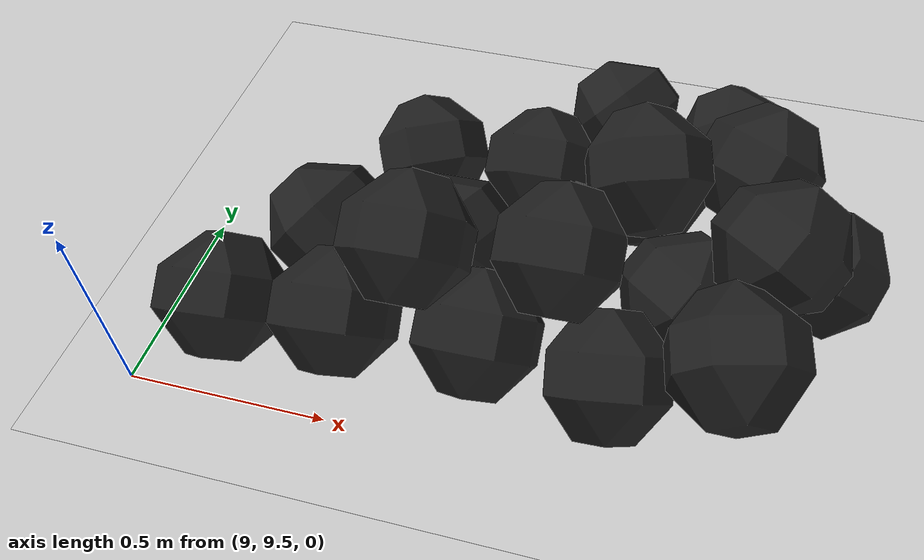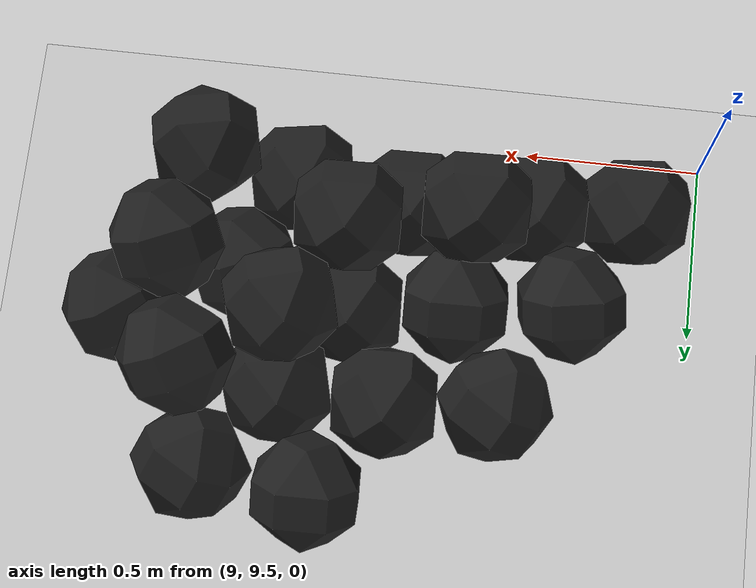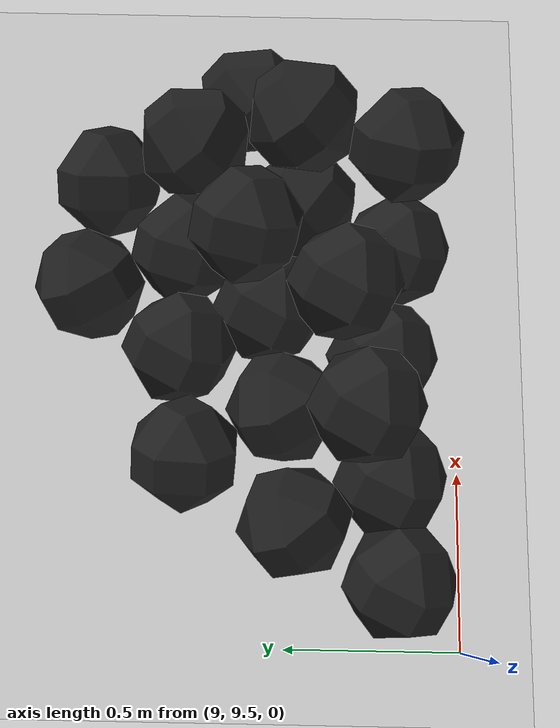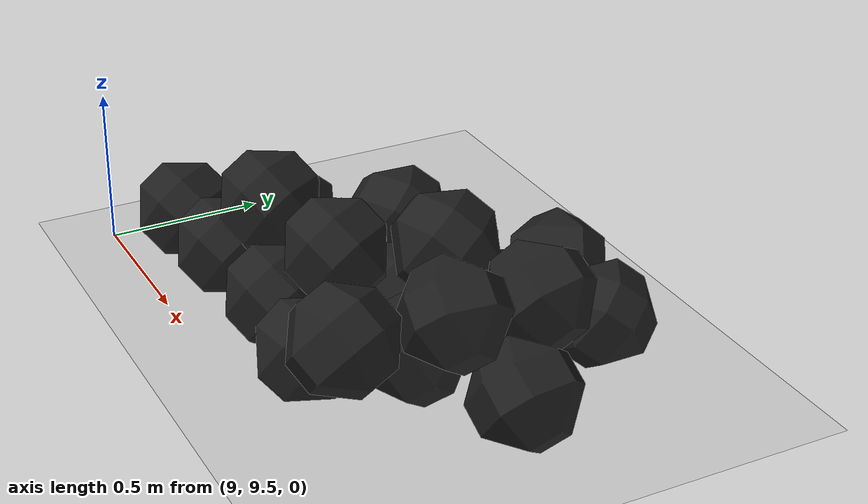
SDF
<sdf version="1.7">
 <world name="default">
  <model name="ground_plane">
   <static>1</static>
   <link name="link">
    <collision name="collision">
     <geometry><plane><normal>0 0 1</normal><size>100 100</size></plane></geometry>
     <surface><friction><ode><mu>100</mu><mu2>50</mu2></ode></friction></surface>
    </collision>
    <visual name="visual">
     <cast_shadows>0</cast_shadows>
     <geometry><plane><normal>0 0 1</normal><size>100 100</size></plane></geometry>
     <material>
      <script><uri>file://media/materials/scripts/gazebo.material</uri><name>Gazebo/Grey</name></script>
     </material>
    </visual>
   </link>
  </model>
  <model name="haoduomiantiaa_17">
   <link name="link_0">
    <inertial>
     <mass>0.2</mass>
     <inertia>
      <ixx>0.166667</ixx>
      <ixy>0</ixy>
      <ixz>0</ixz>
      <iyy>0.166667</iyy>
      <iyz>0</iyz>
      <izz>0.166667</izz>
     </inertia>
    </inertial>
    <visual name="visual">
     <geometry>
      <mesh>
       <uri>/home/lihaoyang/catkin_ws/src/pudong_gazebo/world/stl/haoduomianti.stl</uri>
       <scale>1 1 1</scale>
      </mesh>
     </geometry>
     <material>
      <lighting>1</lighting>
      <script><uri>file://media/materials/scripts/gazebo.material</uri><name>Gazebo/Black</name></script>
      <shader type="pixel"><normal_map>__default__</normal_map></shader>
      <ambient>0.3 0.3 0.3 1</ambient>
      <diffuse>0.7 0.7 0.7 1</diffuse>
      <specular>0.01 0.01 0.01 1</specular>
      <emissive>0 0 0 1</emissive>
     </material>
    </visual>
    <collision name="collision">
     <geometry>
      <mesh>
       <uri>/home/lihaoyang/catkin_ws/src/pudong_gazebo/world/stl/haoduomianti.stl</uri>
       <scale>1 1 1</scale>
      </mesh>
     </geometry>
     <surface>
      <friction>
       <ode><mu>1</mu><mu2>1</mu2><fdir1>0 0 0</fdir1><slip1>0</slip1><slip2>0</slip2></ode>
       <torsional>
        <coefficient>1</coefficient>
        <patch_radius>0</patch_radius>
        <surface_radius>0</surface_radius>
        <use_patch_radius>1</use_patch_radius>
        <ode><slip>0</slip></ode>
       </torsional>
      </friction>
      <bounce><restitution_coefficient>0</restitution_coefficient><threshold>1e+06</threshold></bounce>
      <contact>
       <collide_without_contact>0</collide_without_contact>
       <collide_without_contact_bitmask>1</collide_without_contact_bitmask>
       <collide_bitmask>1</collide_bitmask>
       <ode>
        <soft_cfm>0</soft_cfm>
        <soft_erp>0.2</soft_erp>
        <kp>1e+13</kp>
        <kd>1</kd>
        <max_vel>0.01</max_vel>
        <min_depth>0</min_depth>
       </ode>
       <bullet>
        <split_impulse>1</split_impulse>
        <split_impulse_penetration_threshold>-0.01</split_impulse_penetration_threshold>
        <soft_cfm>0</soft_cfm>
        <soft_erp>0.2</soft_erp>
        <kp>1e+13</kp>
        <kd>1</kd>
       </bullet>
      </contact>
     </surface>
    </collision>
   </link>
   <static>0</static>
   <pose>10.4162 9.61039 0.072056 0.474737 -0.776287 -0.110228</pose>
  </model>
  <model name="haoduomiantiaa_24">
   <link name="link_0">
    <inertial>
     <mass>0.2</mass>
     <inertia>
      <ixx>0.166667</ixx>
      <ixy>0</ixy>
      <ixz>0</ixz>
      <iyy>0.166667</iyy>
      <iyz>0</iyz>
      <izz>0.166667</izz>
     </inertia>
    </inertial>
    <visual name="visual">
     <geometry>
      <mesh>
       <uri>/home/lihaoyang/catkin_ws/src/pudong_gazebo/world/stl/haoduomianti.stl</uri>
       <scale>1 1 1</scale>
      </mesh>
     </geometry>
     <material>
      <lighting>1</lighting>
      <script><uri>file://media/materials/scripts/gazebo.material</uri><name>Gazebo/Black</name></script>
      <shader type="pixel"><normal_map>__default__</normal_map></shader>
      <ambient>0.3 0.3 0.3 1</ambient>
      <diffuse>0.7 0.7 0.7 1</diffuse>
      <specular>0.01 0.01 0.01 1</specular>
      <emissive>0 0 0 1</emissive>
     </material>
    </visual>
    <collision name="collision">
     <geometry>
      <mesh>
       <uri>/home/lihaoyang/catkin_ws/src/pudong_gazebo/world/stl/haoduomianti.stl</uri>
       <scale>1 1 1</scale>
      </mesh>
     </geometry>
     <surface>
      <friction>
       <ode><mu>1</mu><mu2>1</mu2><fdir1>0 0 0</fdir1><slip1>0</slip1><slip2>0</slip2></ode>
       <torsional>
        <coefficient>1</coefficient>
        <patch_radius>0</patch_radius>
        <surface_radius>0</surface_radius>
        <use_patch_radius>1</use_patch_radius>
        <ode><slip>0</slip></ode>
       </torsional>
      </friction>
      <bounce><restitution_coefficient>0</restitution_coefficient><threshold>1e+06</threshold></bounce>
      <contact>
       <collide_without_contact>0</collide_without_contact>
       <collide_without_contact_bitmask>1</collide_without_contact_bitmask>
       <collide_bitmask>1</collide_bitmask>
       <ode>
        <soft_cfm>0</soft_cfm>
        <soft_erp>0.2</soft_erp>
        <kp>1e+13</kp>
        <kd>1</kd>
        <max_vel>0.01</max_vel>
        <min_depth>0</min_depth>
       </ode>
       <bullet>
        <split_impulse>1</split_impulse>
        <split_impulse_penetration_threshold>-0.01</split_impulse_penetration_threshold>
        <soft_cfm>0</soft_cfm>
        <soft_erp>0.2</soft_erp>
        <kp>1e+13</kp>
        <kd>1</kd>
       </bullet>
      </contact>
     </surface>
    </collision>
   </link>
   <static>0</static>
   <pose>10.14 10.1175 0.115022 0.743912 -0.577734 1.88422</pose>
  </model>
  <model name="haoduomiantiaa_25">
   <link name="link_0">
    <inertial>
     <mass>0.2</mass>
     <inertia>
      <ixx>0.166667</ixx>
      <ixy>0</ixy>
      <ixz>0</ixz>
      <iyy>0.166667</iyy>
      <iyz>0</iyz>
      <izz>0.166667</izz>
     </inertia>
    </inertial>
    <visual name="visual">
     <geometry>
      <mesh>
       <uri>/home/lihaoyang/catkin_ws/src/pudong_gazebo/world/stl/haoduomianti.stl</uri>
       <scale>1 1 1</scale>
      </mesh>
     </geometry>
     <material>
      <lighting>1</lighting>
      <script><uri>file://media/materials/scripts/gazebo.material</uri><name>Gazebo/Black</name></script>
      <shader type="pixel"><normal_map>__default__</normal_map></shader>
      <ambient>0.3 0.3 0.3 1</ambient>
      <diffuse>0.7 0.7 0.7 1</diffuse>
      <specular>0.01 0.01 0.01 1</specular>
      <emissive>0 0 0 1</emissive>
     </material>
    </visual>
    <collision name="collision">
     <geometry>
      <mesh>
       <uri>/home/lihaoyang/catkin_ws/src/pudong_gazebo/world/stl/haoduomianti.stl</uri>
       <scale>1 1 1</scale>
      </mesh>
     </geometry>
     <surface>
      <friction>
       <ode><mu>1</mu><mu2>1</mu2><fdir1>0 0 0</fdir1><slip1>0</slip1><slip2>0</slip2></ode>
       <torsional>
        <coefficient>1</coefficient>
        <patch_radius>0</patch_radius>
        <surface_radius>0</surface_radius>
        <use_patch_radius>1</use_patch_radius>
        <ode><slip>0</slip></ode>
       </torsional>
      </friction>
      <bounce><restitution_coefficient>0</restitution_coefficient><threshold>1e+06</threshold></bounce>
      <contact>
       <collide_without_contact>0</collide_without_contact>
       <collide_without_contact_bitmask>1</collide_without_contact_bitmask>
       <collide_bitmask>1</collide_bitmask>
       <ode>
        <soft_cfm>0</soft_cfm>
        <soft_erp>0.2</soft_erp>
        <kp>1e+13</kp>
        <kd>1</kd>
        <max_vel>0.01</max_vel>
        <min_depth>0</min_depth>
       </ode>
       <bullet>
        <split_impulse>1</split_impulse>
        <split_impulse_penetration_threshold>-0.01</split_impulse_penetration_threshold>
        <soft_cfm>0</soft_cfm>
        <soft_erp>0.2</soft_erp>
        <kp>1e+13</kp>
        <kd>1</kd>
       </bullet>
      </contact>
     </surface>
    </collision>
   </link>
   <static>0</static>
   <pose>9.83292 10.3087 -0.115475 0.785396 -0.615449 1.60296</pose>
  </model>
  <model name="haoduomiantiaa_31">
   <link name="link_0">
    <inertial>
     <mass>0.2</mass>
     <inertia>
      <ixx>0.166667</ixx>
      <ixy>0</ixy>
      <ixz>0</ixz>
      <iyy>0.166667</iyy>
      <iyz>0</iyz>
      <izz>0.166667</izz>
     </inertia>
    </inertial>
    <visual name="visual">
     <geometry>
      <mesh>
       <uri>/home/lihaoyang/catkin_ws/src/pudong_gazebo/world/stl/haoduomianti.stl</uri>
       <scale>1 1 1</scale>
      </mesh>
     </geometry>
     <material>
      <lighting>1</lighting>
      <script><uri>file://media/materials/scripts/gazebo.material</uri><name>Gazebo/Black</name></script>
      <shader type="pixel"><normal_map>__default__</normal_map></shader>
      <ambient>0.3 0.3 0.3 1</ambient>
      <diffuse>0.7 0.7 0.7 1</diffuse>
      <specular>0.01 0.01 0.01 1</specular>
      <emissive>0 0 0 1</emissive>
     </material>
    </visual>
    <collision name="collision">
     <geometry>
      <mesh>
       <uri>/home/lihaoyang/catkin_ws/src/pudong_gazebo/world/stl/haoduomianti.stl</uri>
       <scale>1 1 1</scale>
      </mesh>
     </geometry>
     <surface>
      <friction>
       <ode><mu>1</mu><mu2>1</mu2><fdir1>0 0 0</fdir1><slip1>0</slip1><slip2>0</slip2></ode>
       <torsional>
        <coefficient>1</coefficient>
        <patch_radius>0</patch_radius>
        <surface_radius>0</surface_radius>
        <use_patch_radius>1</use_patch_radius>
        <ode><slip>0</slip></ode>
       </torsional>
      </friction>
      <bounce><restitution_coefficient>0</restitution_coefficient><threshold>1e+06</threshold></bounce>
      <contact>
       <collide_without_contact>0</collide_without_contact>
       <collide_without_contact_bitmask>1</collide_without_contact_bitmask>
       <collide_bitmask>1</collide_bitmask>
       <ode>
        <soft_cfm>0</soft_cfm>
        <soft_erp>0.2</soft_erp>
        <kp>1e+13</kp>
        <kd>1</kd>
        <max_vel>0.01</max_vel>
        <min_depth>0</min_depth>
       </ode>
       <bullet>
        <split_impulse>1</split_impulse>
        <split_impulse_penetration_threshold>-0.01</split_impulse_penetration_threshold>
        <soft_cfm>0</soft_cfm>
        <soft_erp>0.2</soft_erp>
        <kp>1e+13</kp>
        <kd>1</kd>
       </bullet>
      </contact>
     </surface>
    </collision>
   </link>
   <static>0</static>
   <pose>9.66597 10.0114 -0.115492 0.785407 -0.615488 -1.55066</pose>
  </model>
  <model name="haoduomiantiaa_37">
   <link name="link_0">
    <inertial>
     <mass>0.2</mass>
     <inertia>
      <ixx>0.166667</ixx>
      <ixy>0</ixy>
      <ixz>0</ixz>
      <iyy>0.166667</iyy>
      <iyz>0</iyz>
      <izz>0.166667</izz>
     </inertia>
    </inertial>
    <visual name="visual">
     <geometry>
      <mesh>
       <uri>/home/lihaoyang/catkin_ws/src/pudong_gazebo/world/stl/haoduomianti.stl</uri>
       <scale>1 1 1</scale>
      </mesh>
     </geometry>
     <material>
      <lighting>1</lighting>
      <script><uri>file://media/materials/scripts/gazebo.material</uri><name>Gazebo/Black</name></script>
      <shader type="pixel"><normal_map>__default__</normal_map></shader>
      <ambient>0.3 0.3 0.3 1</ambient>
      <diffuse>0.7 0.7 0.7 1</diffuse>
      <specular>0.01 0.01 0.01 1</specular>
      <emissive>0 0 0 1</emissive>
     </material>
    </visual>
    <collision name="collision">
     <geometry>
      <mesh>
       <uri>/home/lihaoyang/catkin_ws/src/pudong_gazebo/world/stl/haoduomianti.stl</uri>
       <scale>1 1 1</scale>
      </mesh>
     </geometry>
     <surface>
      <friction>
       <ode><mu>1</mu><mu2>1</mu2><fdir1>0 0 0</fdir1><slip1>0</slip1><slip2>0</slip2></ode>
       <torsional>
        <coefficient>1</coefficient>
        <patch_radius>0</patch_radius>
        <surface_radius>0</surface_radius>
        <use_patch_radius>1</use_patch_radius>
        <ode><slip>0</slip></ode>
       </torsional>
      </friction>
      <bounce><restitution_coefficient>0</restitution_coefficient><threshold>1e+06</threshold></bounce>
      <contact>
       <collide_without_contact>0</collide_without_contact>
       <collide_without_contact_bitmask>1</collide_without_contact_bitmask>
       <collide_bitmask>1</collide_bitmask>
       <ode>
        <soft_cfm>0</soft_cfm>
        <soft_erp>0.2</soft_erp>
        <kp>1e+13</kp>
        <kd>1</kd>
        <max_vel>0.01</max_vel>
        <min_depth>0</min_depth>
       </ode>
       <bullet>
        <split_impulse>1</split_impulse>
        <split_impulse_penetration_threshold>-0.01</split_impulse_penetration_threshold>
        <soft_cfm>0</soft_cfm>
        <soft_erp>0.2</soft_erp>
        <kp>1e+13</kp>
        <kd>1</kd>
       </bullet>
      </contact>
     </surface>
    </collision>
   </link>
   <static>0</static>
   <pose>9.95708 10.0529 -0.1154 0.785363 -0.615462 1.6029</pose>
  </model>
  <model name="haoduomiantiaa_38">
   <link name="link_0">
    <inertial>
     <mass>0.2</mass>
     <inertia>
      <ixx>0.166667</ixx>
      <ixy>0</ixy>
      <ixz>0</ixz>
      <iyy>0.166667</iyy>
      <iyz>0</iyz>
      <izz>0.166667</izz>
     </inertia>
    </inertial>
    <visual name="visual">
     <geometry>
      <mesh>
       <uri>/home/lihaoyang/catkin_ws/src/pudong_gazebo/world/stl/haoduomianti.stl</uri>
       <scale>1 1 1</scale>
      </mesh>
     </geometry>
     <material>
      <lighting>1</lighting>
      <script><uri>file://media/materials/scripts/gazebo.material</uri><name>Gazebo/Black</name></script>
      <shader type="pixel"><normal_map>__default__</normal_map></shader>
      <ambient>0.3 0.3 0.3 1</ambient>
      <diffuse>0.7 0.7 0.7 1</diffuse>
      <specular>0.01 0.01 0.01 1</specular>
      <emissive>0 0 0 1</emissive>
     </material>
    </visual>
    <collision name="collision">
     <geometry>
      <mesh>
       <uri>/home/lihaoyang/catkin_ws/src/pudong_gazebo/world/stl/haoduomianti.stl</uri>
       <scale>1 1 1</scale>
      </mesh>
     </geometry>
     <surface>
      <friction>
       <ode><mu>1</mu><mu2>1</mu2><fdir1>0 0 0</fdir1><slip1>0</slip1><slip2>0</slip2></ode>
       <torsional>
        <coefficient>1</coefficient>
        <patch_radius>0</patch_radius>
        <surface_radius>0</surface_radius>
        <use_patch_radius>1</use_patch_radius>
        <ode><slip>0</slip></ode>
       </torsional>
      </friction>
      <bounce><restitution_coefficient>0</restitution_coefficient><threshold>1e+06</threshold></bounce>
      <contact>
       <collide_without_contact>0</collide_without_contact>
       <collide_without_contact_bitmask>1</collide_without_contact_bitmask>
       <collide_bitmask>1</collide_bitmask>
       <ode>
        <soft_cfm>0</soft_cfm>
        <soft_erp>0.2</soft_erp>
        <kp>1e+13</kp>
        <kd>1</kd>
        <max_vel>0.01</max_vel>
        <min_depth>0</min_depth>
       </ode>
       <bullet>
        <split_impulse>1</split_impulse>
        <split_impulse_penetration_threshold>-0.01</split_impulse_penetration_threshold>
        <soft_cfm>0</soft_cfm>
        <soft_erp>0.2</soft_erp>
        <kp>1e+13</kp>
        <kd>1</kd>
       </bullet>
      </contact>
     </surface>
    </collision>
   </link>
   <static>0</static>
   <pose>9.52933 10.2845 -0.115477 0.785389 -0.615473 -2.14198</pose>
  </model>
  <model name="haoduomiantiaa_41">
   <link name="link_0">
    <inertial>
     <mass>0.2</mass>
     <inertia>
      <ixx>0.166667</ixx>
      <ixy>0</ixy>
      <ixz>0</ixz>
      <iyy>0.166667</iyy>
      <iyz>0</iyz>
      <izz>0.166667</izz>
     </inertia>
    </inertial>
    <visual name="visual">
     <geometry>
      <mesh>
       <uri>/home/lihaoyang/catkin_ws/src/pudong_gazebo/world/stl/haoduomianti.stl</uri>
       <scale>1 1 1</scale>
      </mesh>
     </geometry>
     <material>
      <lighting>1</lighting>
      <script><uri>file://media/materials/scripts/gazebo.material</uri><name>Gazebo/Black</name></script>
      <shader type="pixel"><normal_map>__default__</normal_map></shader>
      <ambient>0.3 0.3 0.3 1</ambient>
      <diffuse>0.7 0.7 0.7 1</diffuse>
      <specular>0.01 0.01 0.01 1</specular>
      <emissive>0 0 0 1</emissive>
     </material>
    </visual>
    <collision name="collision">
     <geometry>
      <mesh>
       <uri>/home/lihaoyang/catkin_ws/src/pudong_gazebo/world/stl/haoduomianti.stl</uri>
       <scale>1 1 1</scale>
      </mesh>
     </geometry>
     <surface>
      <friction>
       <ode><mu>1</mu><mu2>1</mu2><fdir1>0 0 0</fdir1><slip1>0</slip1><slip2>0</slip2></ode>
       <torsional>
        <coefficient>1</coefficient>
        <patch_radius>0</patch_radius>
        <surface_radius>0</surface_radius>
        <use_patch_radius>1</use_patch_radius>
        <ode><slip>0</slip></ode>
       </torsional>
      </friction>
      <bounce><restitution_coefficient>0</restitution_coefficient><threshold>1e+06</threshold></bounce>
      <contact>
       <collide_without_contact>0</collide_without_contact>
       <collide_without_contact_bitmask>1</collide_without_contact_bitmask>
       <collide_bitmask>1</collide_bitmask>
       <ode>
        <soft_cfm>0</soft_cfm>
        <soft_erp>0.2</soft_erp>
        <kp>1e+13</kp>
        <kd>1</kd>
        <max_vel>0.01</max_vel>
        <min_depth>0</min_depth>
       </ode>
       <bullet>
        <split_impulse>1</split_impulse>
        <split_impulse_penetration_threshold>-0.01</split_impulse_penetration_threshold>
        <soft_cfm>0</soft_cfm>
        <soft_erp>0.2</soft_erp>
        <kp>1e+13</kp>
        <kd>1</kd>
       </bullet>
      </contact>
     </surface>
    </collision>
   </link>
   <static>0</static>
   <pose>9.18842 9.68753 -0.11548 0.785398 -0.615476 -2.53553</pose>
  </model>
  <model name="haoduomiantiaa_42">
   <link name="link_0">
    <inertial>
     <mass>0.2</mass>
     <inertia>
      <ixx>0.166667</ixx>
      <ixy>0</ixy>
      <ixz>0</ixz>
      <iyy>0.166667</iyy>
      <iyz>0</iyz>
      <izz>0.166667</izz>
     </inertia>
    </inertial>
    <visual name="visual">
     <geometry>
      <mesh>
       <uri>/home/lihaoyang/catkin_ws/src/pudong_gazebo/world/stl/haoduomianti.stl</uri>
       <scale>1 1 1</scale>
      </mesh>
     </geometry>
     <material>
      <lighting>1</lighting>
      <script><uri>file://media/materials/scripts/gazebo.material</uri><name>Gazebo/Black</name></script>
      <shader type="pixel"><normal_map>__default__</normal_map></shader>
      <ambient>0.3 0.3 0.3 1</ambient>
      <diffuse>0.7 0.7 0.7 1</diffuse>
      <specular>0.01 0.01 0.01 1</specular>
      <emissive>0 0 0 1</emissive>
     </material>
    </visual>
    <collision name="collision">
     <geometry>
      <mesh>
       <uri>/home/lihaoyang/catkin_ws/src/pudong_gazebo/world/stl/haoduomianti.stl</uri>
       <scale>1 1 1</scale>
      </mesh>
     </geometry>
     <surface>
      <friction>
       <ode><mu>1</mu><mu2>1</mu2><fdir1>0 0 0</fdir1><slip1>0</slip1><slip2>0</slip2></ode>
       <torsional>
        <coefficient>1</coefficient>
        <patch_radius>0</patch_radius>
        <surface_radius>0</surface_radius>
        <use_patch_radius>1</use_patch_radius>
        <ode><slip>0</slip></ode>
       </torsional>
      </friction>
      <bounce><restitution_coefficient>0</restitution_coefficient><threshold>1e+06</threshold></bounce>
      <contact>
       <collide_without_contact>0</collide_without_contact>
       <collide_without_contact_bitmask>1</collide_without_contact_bitmask>
       <collide_bitmask>1</collide_bitmask>
       <ode>
        <soft_cfm>0</soft_cfm>
        <soft_erp>0.2</soft_erp>
        <kp>1e+13</kp>
        <kd>1</kd>
        <max_vel>0.01</max_vel>
        <min_depth>0</min_depth>
       </ode>
       <bullet>
        <split_impulse>1</split_impulse>
        <split_impulse_penetration_threshold>-0.01</split_impulse_penetration_threshold>
        <soft_cfm>0</soft_cfm>
        <soft_erp>0.2</soft_erp>
        <kp>1e+13</kp>
        <kd>1</kd>
       </bullet>
      </contact>
     </surface>
    </collision>
   </link>
   <static>0</static>
   <pose>10.2633 9.95814 -0.115457 0.785077 -0.615612 0.933478</pose>
  </model>
  <model name="haoduomiantiaa_58">
   <link name="link_0">
    <inertial>
     <mass>0.2</mass>
     <inertia>
      <ixx>0.166667</ixx>
      <ixy>0</ixy>
      <ixz>0</ixz>
      <iyy>0.166667</iyy>
      <iyz>0</iyz>
      <izz>0.166667</izz>
     </inertia>
    </inertial>
    <visual name="visual">
     <geometry>
      <mesh>
       <uri>/home/lihaoyang/catkin_ws/src/pudong_gazebo/world/stl/haoduomianti.stl</uri>
       <scale>1 1 1</scale>
      </mesh>
     </geometry>
     <material>
      <lighting>1</lighting>
      <script><uri>file://media/materials/scripts/gazebo.material</uri><name>Gazebo/Black</name></script>
      <shader type="pixel"><normal_map>__default__</normal_map></shader>
      <ambient>0.3 0.3 0.3 1</ambient>
      <diffuse>0.7 0.7 0.7 1</diffuse>
      <specular>0.01 0.01 0.01 1</specular>
      <emissive>0 0 0 1</emissive>
     </material>
    </visual>
    <collision name="collision">
     <geometry>
      <mesh>
       <uri>/home/lihaoyang/catkin_ws/src/pudong_gazebo/world/stl/haoduomianti.stl</uri>
       <scale>1 1 1</scale>
      </mesh>
     </geometry>
     <surface>
      <friction>
       <ode><mu>1</mu><mu2>1</mu2><fdir1>0 0 0</fdir1><slip1>0</slip1><slip2>0</slip2></ode>
       <torsional>
        <coefficient>1</coefficient>
        <patch_radius>0</patch_radius>
        <surface_radius>0</surface_radius>
        <use_patch_radius>1</use_patch_radius>
        <ode><slip>0</slip></ode>
       </torsional>
      </friction>
      <bounce><restitution_coefficient>0</restitution_coefficient><threshold>1e+06</threshold></bounce>
      <contact>
       <collide_without_contact>0</collide_without_contact>
       <collide_without_contact_bitmask>1</collide_without_contact_bitmask>
       <collide_bitmask>1</collide_bitmask>
       <ode>
        <soft_cfm>0</soft_cfm>
        <soft_erp>0.2</soft_erp>
        <kp>1e+13</kp>
        <kd>1</kd>
        <max_vel>0.01</max_vel>
        <min_depth>0</min_depth>
       </ode>
       <bullet>
        <split_impulse>1</split_impulse>
        <split_impulse_penetration_threshold>-0.01</split_impulse_penetration_threshold>
        <soft_cfm>0</soft_cfm>
        <soft_erp>0.2</soft_erp>
        <kp>1e+13</kp>
        <kd>1</kd>
       </bullet>
      </contact>
     </surface>
    </collision>
   </link>
   <static>0</static>
   <pose>9.34716 9.97802 -0.11547 0.785402 -0.615478 0.695038</pose>
  </model>
  <model name="haoduomiantiaa_68">
   <link name="link_0">
    <inertial>
     <mass>0.2</mass>
     <inertia>
      <ixx>0.166667</ixx>
      <ixy>0</ixy>
      <ixz>0</ixz>
      <iyy>0.166667</iyy>
      <iyz>0</iyz>
      <izz>0.166667</izz>
     </inertia>
    </inertial>
    <visual name="visual">
     <geometry>
      <mesh>
       <uri>/home/lihaoyang/catkin_ws/src/pudong_gazebo/world/stl/haoduomianti.stl</uri>
       <scale>1 1 1</scale>
      </mesh>
     </geometry>
     <material>
      <lighting>1</lighting>
      <script><uri>file://media/materials/scripts/gazebo.material</uri><name>Gazebo/Black</name></script>
      <shader type="pixel"><normal_map>__default__</normal_map></shader>
      <ambient>0.3 0.3 0.3 1</ambient>
      <diffuse>0.7 0.7 0.7 1</diffuse>
      <specular>0.01 0.01 0.01 1</specular>
      <emissive>0 0 0 1</emissive>
     </material>
    </visual>
    <collision name="collision">
     <geometry>
      <mesh>
       <uri>/home/lihaoyang/catkin_ws/src/pudong_gazebo/world/stl/haoduomianti.stl</uri>
       <scale>1 1 1</scale>
      </mesh>
     </geometry>
     <surface>
      <friction>
       <ode><mu>1</mu><mu2>1</mu2><fdir1>0 0 0</fdir1><slip1>0</slip1><slip2>0</slip2></ode>
       <torsional>
        <coefficient>1</coefficient>
        <patch_radius>0</patch_radius>
        <surface_radius>0</surface_radius>
        <use_patch_radius>1</use_patch_radius>
        <ode><slip>0</slip></ode>
       </torsional>
      </friction>
      <bounce><restitution_coefficient>0</restitution_coefficient><threshold>1e+06</threshold></bounce>
      <contact>
       <collide_without_contact>0</collide_without_contact>
       <collide_without_contact_bitmask>1</collide_without_contact_bitmask>
       <collide_bitmask>1</collide_bitmask>
       <ode>
        <soft_cfm>0</soft_cfm>
        <soft_erp>0.2</soft_erp>
        <kp>1e+13</kp>
        <kd>1</kd>
        <max_vel>0.01</max_vel>
        <min_depth>0</min_depth>
       </ode>
       <bullet>
        <split_impulse>1</split_impulse>
        <split_impulse_penetration_threshold>-0.01</split_impulse_penetration_threshold>
        <soft_cfm>0</soft_cfm>
        <soft_erp>0.2</soft_erp>
        <kp>1e+13</kp>
        <kd>1</kd>
       </bullet>
      </contact>
     </surface>
    </collision>
   </link>
   <static>0</static>
   <pose>9.4703 9.71107 -0.11547 0.785405 -0.615485 -0.441099</pose>
  </model>
  <model name="haoduomiantiaa_69">
   <link name="link_0">
    <inertial>
     <mass>0.2</mass>
     <inertia>
      <ixx>0.166667</ixx>
      <ixy>0</ixy>
      <ixz>0</ixz>
      <iyy>0.166667</iyy>
      <iyz>0</iyz>
      <izz>0.166667</izz>
     </inertia>
    </inertial>
    <visual name="visual">
     <geometry>
      <mesh>
       <uri>/home/lihaoyang/catkin_ws/src/pudong_gazebo/world/stl/haoduomianti.stl</uri>
       <scale>1 1 1</scale>
      </mesh>
     </geometry>
     <material>
      <lighting>1</lighting>
      <script><uri>file://media/materials/scripts/gazebo.material</uri><name>Gazebo/Black</name></script>
      <shader type="pixel"><normal_map>__default__</normal_map></shader>
      <ambient>0.3 0.3 0.3 1</ambient>
      <diffuse>0.7 0.7 0.7 1</diffuse>
      <specular>0.01 0.01 0.01 1</specular>
      <emissive>0 0 0 1</emissive>
     </material>
    </visual>
    <collision name="collision">
     <geometry>
      <mesh>
       <uri>/home/lihaoyang/catkin_ws/src/pudong_gazebo/world/stl/haoduomianti.stl</uri>
       <scale>1 1 1</scale>
      </mesh>
     </geometry>
     <surface>
      <friction>
       <ode><mu>1</mu><mu2>1</mu2><fdir1>0 0 0</fdir1><slip1>0</slip1><slip2>0</slip2></ode>
       <torsional>
        <coefficient>1</coefficient>
        <patch_radius>0</patch_radius>
        <surface_radius>0</surface_radius>
        <use_patch_radius>1</use_patch_radius>
        <ode><slip>0</slip></ode>
       </torsional>
      </friction>
      <bounce><restitution_coefficient>0</restitution_coefficient><threshold>1e+06</threshold></bounce>
      <contact>
       <collide_without_contact>0</collide_without_contact>
       <collide_without_contact_bitmask>1</collide_without_contact_bitmask>
       <collide_bitmask>1</collide_bitmask>
       <ode>
        <soft_cfm>0</soft_cfm>
        <soft_erp>0.2</soft_erp>
        <kp>1e+13</kp>
        <kd>1</kd>
        <max_vel>0.01</max_vel>
        <min_depth>0</min_depth>
       </ode>
       <bullet>
        <split_impulse>1</split_impulse>
        <split_impulse_penetration_threshold>-0.01</split_impulse_penetration_threshold>
        <soft_cfm>0</soft_cfm>
        <soft_erp>0.2</soft_erp>
        <kp>1e+13</kp>
        <kd>1</kd>
       </bullet>
      </contact>
     </surface>
    </collision>
   </link>
   <static>0</static>
   <pose>10.4538 9.97343 0.098094 0.789806 -0.607871 -1.15204</pose>
  </model>
  <model name="haoduomiantiaa_72">
   <link name="link_0">
    <inertial>
     <mass>0.2</mass>
     <inertia>
      <ixx>0.166667</ixx>
      <ixy>0</ixy>
      <ixz>0</ixz>
      <iyy>0.166667</iyy>
      <iyz>0</iyz>
      <izz>0.166667</izz>
     </inertia>
    </inertial>
    <visual name="visual">
     <geometry>
      <mesh>
       <uri>/home/lihaoyang/catkin_ws/src/pudong_gazebo/world/stl/haoduomianti.stl</uri>
       <scale>1 1 1</scale>
      </mesh>
     </geometry>
     <material>
      <lighting>1</lighting>
      <script><uri>file://media/materials/scripts/gazebo.material</uri><name>Gazebo/Black</name></script>
      <shader type="pixel"><normal_map>__default__</normal_map></shader>
      <ambient>0.3 0.3 0.3 1</ambient>
      <diffuse>0.7 0.7 0.7 1</diffuse>
      <specular>0.01 0.01 0.01 1</specular>
      <emissive>0 0 0 1</emissive>
     </material>
    </visual>
    <collision name="collision">
     <geometry>
      <mesh>
       <uri>/home/lihaoyang/catkin_ws/src/pudong_gazebo/world/stl/haoduomianti.stl</uri>
       <scale>1 1 1</scale>
      </mesh>
     </geometry>
     <surface>
      <friction>
       <ode><mu>1</mu><mu2>1</mu2><fdir1>0 0 0</fdir1><slip1>0</slip1><slip2>0</slip2></ode>
       <torsional>
        <coefficient>1</coefficient>
        <patch_radius>0</patch_radius>
        <surface_radius>0</surface_radius>
        <use_patch_radius>1</use_patch_radius>
        <ode><slip>0</slip></ode>
       </torsional>
      </friction>
      <bounce><restitution_coefficient>0</restitution_coefficient><threshold>1e+06</threshold></bounce>
      <contact>
       <collide_without_contact>0</collide_without_contact>
       <collide_without_contact_bitmask>1</collide_without_contact_bitmask>
       <collide_bitmask>1</collide_bitmask>
       <ode>
        <soft_cfm>0</soft_cfm>
        <soft_erp>0.2</soft_erp>
        <kp>1e+13</kp>
        <kd>1</kd>
        <max_vel>0.01</max_vel>
        <min_depth>0</min_depth>
       </ode>
       <bullet>
        <split_impulse>1</split_impulse>
        <split_impulse_penetration_threshold>-0.01</split_impulse_penetration_threshold>
        <soft_cfm>0</soft_cfm>
        <soft_erp>0.2</soft_erp>
        <kp>1e+13</kp>
        <kd>1</kd>
       </bullet>
      </contact>
     </surface>
    </collision>
   </link>
   <static>0</static>
   <pose>9.978 9.85309 0.08827 0.790215 -0.620871 1.59504</pose>
  </model>
  <model name="haoduomiantiaa_73">
   <link name="link_0">
    <inertial>
     <mass>0.2</mass>
     <inertia>
      <ixx>0.166667</ixx>
      <ixy>0</ixy>
      <ixz>0</ixz>
      <iyy>0.166667</iyy>
      <iyz>0</iyz>
      <izz>0.166667</izz>
     </inertia>
    </inertial>
    <visual name="visual">
     <geometry>
      <mesh>
       <uri>/home/lihaoyang/catkin_ws/src/pudong_gazebo/world/stl/haoduomianti.stl</uri>
       <scale>1 1 1</scale>
      </mesh>
     </geometry>
     <material>
      <lighting>1</lighting>
      <script><uri>file://media/materials/scripts/gazebo.material</uri><name>Gazebo/Black</name></script>
      <shader type="pixel"><normal_map>__default__</normal_map></shader>
      <ambient>0.3 0.3 0.3 1</ambient>
      <diffuse>0.7 0.7 0.7 1</diffuse>
      <specular>0.01 0.01 0.01 1</specular>
      <emissive>0 0 0 1</emissive>
     </material>
    </visual>
    <collision name="collision">
     <geometry>
      <mesh>
       <uri>/home/lihaoyang/catkin_ws/src/pudong_gazebo/world/stl/haoduomianti.stl</uri>
       <scale>1 1 1</scale>
      </mesh>
     </geometry>
     <surface>
      <friction>
       <ode><mu>1</mu><mu2>1</mu2><fdir1>0 0 0</fdir1><slip1>0</slip1><slip2>0</slip2></ode>
       <torsional>
        <coefficient>1</coefficient>
        <patch_radius>0</patch_radius>
        <surface_radius>0</surface_radius>
        <use_patch_radius>1</use_patch_radius>
        <ode><slip>0</slip></ode>
       </torsional>
      </friction>
      <bounce><restitution_coefficient>0</restitution_coefficient><threshold>1e+06</threshold></bounce>
      <contact>
       <collide_without_contact>0</collide_without_contact>
       <collide_without_contact_bitmask>1</collide_without_contact_bitmask>
       <collide_bitmask>1</collide_bitmask>
       <ode>
        <soft_cfm>0</soft_cfm>
        <soft_erp>0.2</soft_erp>
        <kp>1e+13</kp>
        <kd>1</kd>
        <max_vel>0.01</max_vel>
        <min_depth>0</min_depth>
       </ode>
       <bullet>
        <split_impulse>1</split_impulse>
        <split_impulse_penetration_threshold>-0.01</split_impulse_penetration_threshold>
        <soft_cfm>0</soft_cfm>
        <soft_erp>0.2</soft_erp>
        <kp>1e+13</kp>
        <kd>1</kd>
       </bullet>
      </contact>
     </surface>
    </collision>
   </link>
   <static>0</static>
   <pose>10.5944 10.1171 -0.11563 0.785695 -0.615617 -3.02558</pose>
  </model>
  <model name="haoduomiantiaa_84">
   <link name="link_0">
    <inertial>
     <mass>0.2</mass>
     <inertia>
      <ixx>0.166667</ixx>
      <ixy>0</ixy>
      <ixz>0</ixz>
      <iyy>0.166667</iyy>
      <iyz>0</iyz>
      <izz>0.166667</izz>
     </inertia>
    </inertial>
    <visual name="visual">
     <geometry>
      <mesh>
       <uri>/home/lihaoyang/catkin_ws/src/pudong_gazebo/world/stl/haoduomianti.stl</uri>
       <scale>1 1 1</scale>
      </mesh>
     </geometry>
     <material>
      <lighting>1</lighting>
      <script><uri>file://media/materials/scripts/gazebo.material</uri><name>Gazebo/Black</name></script>
      <shader type="pixel"><normal_map>__default__</normal_map></shader>
      <ambient>0.3 0.3 0.3 1</ambient>
      <diffuse>0.7 0.7 0.7 1</diffuse>
      <specular>0.01 0.01 0.01 1</specular>
      <emissive>0 0 0 1</emissive>
     </material>
    </visual>
    <collision name="collision">
     <geometry>
      <mesh>
       <uri>/home/lihaoyang/catkin_ws/src/pudong_gazebo/world/stl/haoduomianti.stl</uri>
       <scale>1 1 1</scale>
      </mesh>
     </geometry>
     <surface>
      <friction>
       <ode><mu>1</mu><mu2>1</mu2><fdir1>0 0 0</fdir1><slip1>0</slip1><slip2>0</slip2></ode>
       <torsional>
        <coefficient>1</coefficient>
        <patch_radius>0</patch_radius>
        <surface_radius>0</surface_radius>
        <use_patch_radius>1</use_patch_radius>
        <ode><slip>0</slip></ode>
       </torsional>
      </friction>
      <bounce><restitution_coefficient>0</restitution_coefficient><threshold>1e+06</threshold></bounce>
      <contact>
       <collide_without_contact>0</collide_without_contact>
       <collide_without_contact_bitmask>1</collide_without_contact_bitmask>
       <collide_bitmask>1</collide_bitmask>
       <ode>
        <soft_cfm>0</soft_cfm>
        <soft_erp>0.2</soft_erp>
        <kp>1e+13</kp>
        <kd>1</kd>
        <max_vel>0.01</max_vel>
        <min_depth>0</min_depth>
       </ode>
       <bullet>
        <split_impulse>1</split_impulse>
        <split_impulse_penetration_threshold>-0.01</split_impulse_penetration_threshold>
        <soft_cfm>0</soft_cfm>
        <soft_erp>0.2</soft_erp>
        <kp>1e+13</kp>
        <kd>1</kd>
       </bullet>
      </contact>
     </surface>
    </collision>
   </link>
   <static>0</static>
   <pose>10.4008 10.3141 0.049461 0.608575 -0.570765 -2.97181</pose>
  </model>
  <model name="haoduomiantiaa_85">
   <link name="link_0">
    <inertial>
     <mass>0.2</mass>
     <inertia>
      <ixx>0.166667</ixx>
      <ixy>0</ixy>
      <ixz>0</ixz>
      <iyy>0.166667</iyy>
      <iyz>0</iyz>
      <izz>0.166667</izz>
     </inertia>
    </inertial>
    <visual name="visual">
     <geometry>
      <mesh>
       <uri>/home/lihaoyang/catkin_ws/src/pudong_gazebo/world/stl/haoduomianti.stl</uri>
       <scale>1 1 1</scale>
      </mesh>
     </geometry>
     <material>
      <lighting>1</lighting>
      <script><uri>file://media/materials/scripts/gazebo.material</uri><name>Gazebo/Black</name></script>
      <shader type="pixel"><normal_map>__default__</normal_map></shader>
      <ambient>0.3 0.3 0.3 1</ambient>
      <diffuse>0.7 0.7 0.7 1</diffuse>
      <specular>0.01 0.01 0.01 1</specular>
      <emissive>0 0 0 1</emissive>
     </material>
    </visual>
    <collision name="collision">
     <geometry>
      <mesh>
       <uri>/home/lihaoyang/catkin_ws/src/pudong_gazebo/world/stl/haoduomianti.stl</uri>
       <scale>1 1 1</scale>
      </mesh>
     </geometry>
     <surface>
      <friction>
       <ode><mu>1</mu><mu2>1</mu2><fdir1>0 0 0</fdir1><slip1>0</slip1><slip2>0</slip2></ode>
       <torsional>
        <coefficient>1</coefficient>
        <patch_radius>0</patch_radius>
        <surface_radius>0</surface_radius>
        <use_patch_radius>1</use_patch_radius>
        <ode><slip>0</slip></ode>
       </torsional>
      </friction>
      <bounce><restitution_coefficient>0</restitution_coefficient><threshold>1e+06</threshold></bounce>
      <contact>
       <collide_without_contact>0</collide_without_contact>
       <collide_without_contact_bitmask>1</collide_without_contact_bitmask>
       <collide_bitmask>1</collide_bitmask>
       <ode>
        <soft_cfm>0</soft_cfm>
        <soft_erp>0.2</soft_erp>
        <kp>1e+13</kp>
        <kd>1</kd>
        <max_vel>0.01</max_vel>
        <min_depth>0</min_depth>
       </ode>
       <bullet>
        <split_impulse>1</split_impulse>
        <split_impulse_penetration_threshold>-0.01</split_impulse_penetration_threshold>
        <soft_cfm>0</soft_cfm>
        <soft_erp>0.2</soft_erp>
        <kp>1e+13</kp>
        <kd>1</kd>
       </bullet>
      </contact>
     </surface>
    </collision>
   </link>
   <static>0</static>
   <pose>9.6426 9.79181 0.099626 0.771856 -0.600803 1.60624</pose>
  </model>
  <model name="haoduomiantiaa_87">
   <link name="link_0">
    <inertial>
     <mass>0.2</mass>
     <inertia>
      <ixx>0.166667</ixx>
      <ixy>0</ixy>
      <ixz>0</ixz>
      <iyy>0.166667</iyy>
      <iyz>0</iyz>
      <izz>0.166667</izz>
     </inertia>
    </inertial>
    <visual name="visual">
     <geometry>
      <mesh>
       <uri>/home/lihaoyang/catkin_ws/src/pudong_gazebo/world/stl/haoduomianti.stl</uri>
       <scale>1 1 1</scale>
      </mesh>
     </geometry>
     <material>
      <lighting>1</lighting>
      <script><uri>file://media/materials/scripts/gazebo.material</uri><name>Gazebo/Black</name></script>
      <shader type="pixel"><normal_map>__default__</normal_map></shader>
      <ambient>0.3 0.3 0.3 1</ambient>
      <diffuse>0.7 0.7 0.7 1</diffuse>
      <specular>0.01 0.01 0.01 1</specular>
      <emissive>0 0 0 1</emissive>
     </material>
    </visual>
    <collision name="collision">
     <geometry>
      <mesh>
       <uri>/home/lihaoyang/catkin_ws/src/pudong_gazebo/world/stl/haoduomianti.stl</uri>
       <scale>1 1 1</scale>
      </mesh>
     </geometry>
     <surface>
      <friction>
       <ode><mu>1</mu><mu2>1</mu2><fdir1>0 0 0</fdir1><slip1>0</slip1><slip2>0</slip2></ode>
       <torsional>
        <coefficient>1</coefficient>
        <patch_radius>0</patch_radius>
        <surface_radius>0</surface_radius>
        <use_patch_radius>1</use_patch_radius>
        <ode><slip>0</slip></ode>
       </torsional>
      </friction>
      <bounce><restitution_coefficient>0</restitution_coefficient><threshold>1e+06</threshold></bounce>
      <contact>
       <collide_without_contact>0</collide_without_contact>
       <collide_without_contact_bitmask>1</collide_without_contact_bitmask>
       <collide_bitmask>1</collide_bitmask>
       <ode>
        <soft_cfm>0</soft_cfm>
        <soft_erp>0.2</soft_erp>
        <kp>1e+13</kp>
        <kd>1</kd>
        <max_vel>0.01</max_vel>
        <min_depth>0</min_depth>
       </ode>
       <bullet>
        <split_impulse>1</split_impulse>
        <split_impulse_penetration_threshold>-0.01</split_impulse_penetration_threshold>
        <soft_cfm>0</soft_cfm>
        <soft_erp>0.2</soft_erp>
        <kp>1e+13</kp>
        <kd>1</kd>
       </bullet>
      </contact>
     </surface>
    </collision>
   </link>
   <static>0</static>
   <pose>10.1308 9.68905 -0.115425 0.785341 -0.615369 -2.46011</pose>
  </model>
  <model name="haoduomiantiaa_112">
   <link name="link_0">
    <inertial>
     <mass>0.2</mass>
     <inertia>
      <ixx>0.166667</ixx>
      <ixy>0</ixy>
      <ixz>0</ixz>
      <iyy>0.166667</iyy>
      <iyz>0</iyz>
      <izz>0.166667</izz>
     </inertia>
    </inertial>
    <visual name="visual">
     <geometry>
      <mesh>
       <uri>/home/lihaoyang/catkin_ws/src/pudong_gazebo/world/stl/haoduomianti.stl</uri>
       <scale>1 1 1</scale>
      </mesh>
     </geometry>
     <material>
      <lighting>1</lighting>
      <script><uri>file://media/materials/scripts/gazebo.material</uri><name>Gazebo/Black</name></script>
      <shader type="pixel"><normal_map>__default__</normal_map></shader>
      <ambient>0.3 0.3 0.3 1</ambient>
      <diffuse>0.7 0.7 0.7 1</diffuse>
      <specular>0.01 0.01 0.01 1</specular>
      <emissive>0 0 0 1</emissive>
     </material>
    </visual>
    <collision name="collision">
     <geometry>
      <mesh>
       <uri>/home/lihaoyang/catkin_ws/src/pudong_gazebo/world/stl/haoduomianti.stl</uri>
       <scale>1 1 1</scale>
      </mesh>
     </geometry>
     <surface>
      <friction>
       <ode><mu>1</mu><mu2>1</mu2><fdir1>0 0 0</fdir1><slip1>0</slip1><slip2>0</slip2></ode>
       <torsional>
        <coefficient>1</coefficient>
        <patch_radius>0</patch_radius>
        <surface_radius>0</surface_radius>
        <use_patch_radius>1</use_patch_radius>
        <ode><slip>0</slip></ode>
       </torsional>
      </friction>
      <bounce><restitution_coefficient>0</restitution_coefficient><threshold>1e+06</threshold></bounce>
      <contact>
       <collide_without_contact>0</collide_without_contact>
       <collide_without_contact_bitmask>1</collide_without_contact_bitmask>
       <collide_bitmask>1</collide_bitmask>
       <ode>
        <soft_cfm>0</soft_cfm>
        <soft_erp>0.2</soft_erp>
        <kp>1e+13</kp>
        <kd>1</kd>
        <max_vel>0.01</max_vel>
        <min_depth>0</min_depth>
       </ode>
       <bullet>
        <split_impulse>1</split_impulse>
        <split_impulse_penetration_threshold>-0.01</split_impulse_penetration_threshold>
        <soft_cfm>0</soft_cfm>
        <soft_erp>0.2</soft_erp>
        <kp>1e+13</kp>
        <kd>1</kd>
       </bullet>
      </contact>
     </surface>
    </collision>
   </link>
   <static>0</static>
   <pose>10.0154 10.5748 -0.115477 0.785354 -0.615487 0.538207</pose>
  </model>
  <model name="haoduomiantiaa_113">
   <link name="link_0">
    <inertial>
     <mass>0.2</mass>
     <inertia>
      <ixx>0.166667</ixx>
      <ixy>0</ixy>
      <ixz>0</ixz>
      <iyy>0.166667</iyy>
      <iyz>0</iyz>
      <izz>0.166667</izz>
     </inertia>
    </inertial>
    <visual name="visual">
     <geometry>
      <mesh>
       <uri>/home/lihaoyang/catkin_ws/src/pudong_gazebo/world/stl/haoduomianti.stl</uri>
       <scale>1 1 1</scale>
      </mesh>
     </geometry>
     <material>
      <lighting>1</lighting>
      <script><uri>file://media/materials/scripts/gazebo.material</uri><name>Gazebo/Black</name></script>
      <shader type="pixel"><normal_map>__default__</normal_map></shader>
      <ambient>0.3 0.3 0.3 1</ambient>
      <diffuse>0.7 0.7 0.7 1</diffuse>
      <specular>0.01 0.01 0.01 1</specular>
      <emissive>0 0 0 1</emissive>
     </material>
    </visual>
    <collision name="collision">
     <geometry>
      <mesh>
       <uri>/home/lihaoyang/catkin_ws/src/pudong_gazebo/world/stl/haoduomianti.stl</uri>
       <scale>1 1 1</scale>
      </mesh>
     </geometry>
     <surface>
      <friction>
       <ode><mu>1</mu><mu2>1</mu2><fdir1>0 0 0</fdir1><slip1>0</slip1><slip2>0</slip2></ode>
       <torsional>
        <coefficient>1</coefficient>
        <patch_radius>0</patch_radius>
        <surface_radius>0</surface_radius>
        <use_patch_radius>1</use_patch_radius>
        <ode><slip>0</slip></ode>
       </torsional>
      </friction>
      <bounce><restitution_coefficient>0</restitution_coefficient><threshold>1e+06</threshold></bounce>
      <contact>
       <collide_without_contact>0</collide_without_contact>
       <collide_without_contact_bitmask>1</collide_without_contact_bitmask>
       <collide_bitmask>1</collide_bitmask>
       <ode>
        <soft_cfm>0</soft_cfm>
        <soft_erp>0.2</soft_erp>
        <kp>1e+13</kp>
        <kd>1</kd>
        <max_vel>0.01</max_vel>
        <min_depth>0</min_depth>
       </ode>
       <bullet>
        <split_impulse>1</split_impulse>
        <split_impulse_penetration_threshold>-0.01</split_impulse_penetration_threshold>
        <soft_cfm>0</soft_cfm>
        <soft_erp>0.2</soft_erp>
        <kp>1e+13</kp>
        <kd>1</kd>
       </bullet>
      </contact>
     </surface>
    </collision>
   </link>
   <static>0</static>
   <pose>10.1301 10.2969 -0.115689 0.785158 -0.615585 -0.285072</pose>
  </model>
  <model name="haoduomiantiaa_121">
   <link name="link_0">
    <inertial>
     <mass>0.2</mass>
     <inertia>
      <ixx>0.166667</ixx>
      <ixy>0</ixy>
      <ixz>0</ixz>
      <iyy>0.166667</iyy>
      <iyz>0</iyz>
      <izz>0.166667</izz>
     </inertia>
    </inertial>
    <visual name="visual">
     <geometry>
      <mesh>
       <uri>/home/lihaoyang/catkin_ws/src/pudong_gazebo/world/stl/haoduomianti.stl</uri>
       <scale>1 1 1</scale>
      </mesh>
     </geometry>
     <material>
      <lighting>1</lighting>
      <script><uri>file://media/materials/scripts/gazebo.material</uri><name>Gazebo/Black</name></script>
      <shader type="pixel"><normal_map>__default__</normal_map></shader>
      <ambient>0.3 0.3 0.3 1</ambient>
      <diffuse>0.7 0.7 0.7 1</diffuse>
      <specular>0.01 0.01 0.01 1</specular>
      <emissive>0 0 0 1</emissive>
     </material>
    </visual>
    <collision name="collision">
     <geometry>
      <mesh>
       <uri>/home/lihaoyang/catkin_ws/src/pudong_gazebo/world/stl/haoduomianti.stl</uri>
       <scale>1 1 1</scale>
      </mesh>
     </geometry>
     <surface>
      <friction>
       <ode><mu>1</mu><mu2>1</mu2><fdir1>0 0 0</fdir1><slip1>0</slip1><slip2>0</slip2></ode>
       <torsional>
        <coefficient>1</coefficient>
        <patch_radius>0</patch_radius>
        <surface_radius>0</surface_radius>
        <use_patch_radius>1</use_patch_radius>
        <ode><slip>0</slip></ode>
       </torsional>
      </friction>
      <bounce><restitution_coefficient>0</restitution_coefficient><threshold>1e+06</threshold></bounce>
      <contact>
       <collide_without_contact>0</collide_without_contact>
       <collide_without_contact_bitmask>1</collide_without_contact_bitmask>
       <collide_bitmask>1</collide_bitmask>
       <ode>
        <soft_cfm>0</soft_cfm>
        <soft_erp>0.2</soft_erp>
        <kp>1e+13</kp>
        <kd>1</kd>
        <max_vel>0.01</max_vel>
        <min_depth>0</min_depth>
       </ode>
       <bullet>
        <split_impulse>1</split_impulse>
        <split_impulse_penetration_threshold>-0.01</split_impulse_penetration_threshold>
        <soft_cfm>0</soft_cfm>
        <soft_erp>0.2</soft_erp>
        <kp>1e+13</kp>
        <kd>1</kd>
       </bullet>
      </contact>
     </surface>
    </collision>
   </link>
   <static>0</static>
   <pose>10.3331 10.5317 -0.115562 0.785397 -0.615435 2.10133</pose>
  </model>
  <model name="haoduomiantiaa_131">
   <link name="link_0">
    <inertial>
     <mass>0.2</mass>
     <inertia>
      <ixx>0.166667</ixx>
      <ixy>0</ixy>
      <ixz>0</ixz>
      <iyy>0.166667</iyy>
      <iyz>0</iyz>
      <izz>0.166667</izz>
     </inertia>
    </inertial>
    <visual name="visual">
     <geometry>
      <mesh>
       <uri>/home/lihaoyang/catkin_ws/src/pudong_gazebo/world/stl/haoduomianti.stl</uri>
       <scale>1 1 1</scale>
      </mesh>
     </geometry>
     <material>
      <lighting>1</lighting>
      <script><uri>file://media/materials/scripts/gazebo.material</uri><name>Gazebo/Black</name></script>
      <shader type="pixel"><normal_map>__default__</normal_map></shader>
      <ambient>0.3 0.3 0.3 1</ambient>
      <diffuse>0.7 0.7 0.7 1</diffuse>
      <specular>0.01 0.01 0.01 1</specular>
      <emissive>0 0 0 1</emissive>
     </material>
    </visual>
    <collision name="collision">
     <geometry>
      <mesh>
       <uri>/home/lihaoyang/catkin_ws/src/pudong_gazebo/world/stl/haoduomianti.stl</uri>
       <scale>1 1 1</scale>
      </mesh>
     </geometry>
     <surface>
      <friction>
       <ode><mu>1</mu><mu2>1</mu2><fdir1>0 0 0</fdir1><slip1>0</slip1><slip2>0</slip2></ode>
       <torsional>
        <coefficient>1</coefficient>
        <patch_radius>0</patch_radius>
        <surface_radius>0</surface_radius>
        <use_patch_radius>1</use_patch_radius>
        <ode><slip>0</slip></ode>
       </torsional>
      </friction>
      <bounce><restitution_coefficient>0</restitution_coefficient><threshold>1e+06</threshold></bounce>
      <contact>
       <collide_without_contact>0</collide_without_contact>
       <collide_without_contact_bitmask>1</collide_without_contact_bitmask>
       <collide_bitmask>1</collide_bitmask>
       <ode>
        <soft_cfm>0</soft_cfm>
        <soft_erp>0.2</soft_erp>
        <kp>1e+13</kp>
        <kd>1</kd>
        <max_vel>0.01</max_vel>
        <min_depth>0</min_depth>
       </ode>
       <bullet>
        <split_impulse>1</split_impulse>
        <split_impulse_penetration_threshold>-0.01</split_impulse_penetration_threshold>
        <soft_cfm>0</soft_cfm>
        <soft_erp>0.2</soft_erp>
        <kp>1e+13</kp>
        <kd>1</kd>
       </bullet>
      </contact>
     </surface>
    </collision>
   </link>
   <static>0</static>
   <pose>9.8166 9.73034 -0.11548 0.785399 -0.615485 -0.505659</pose>
  </model>
 </world>
</sdf>
